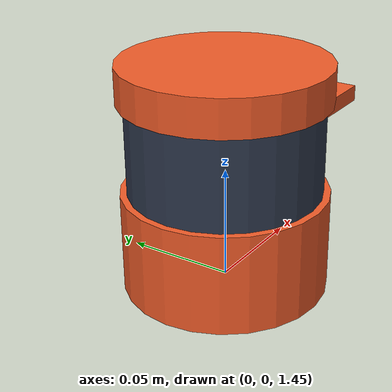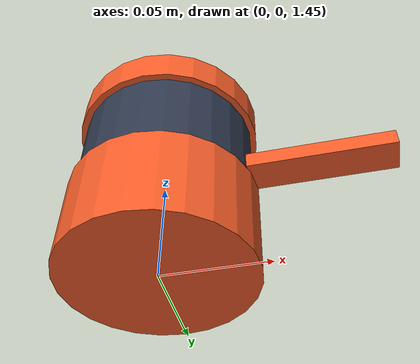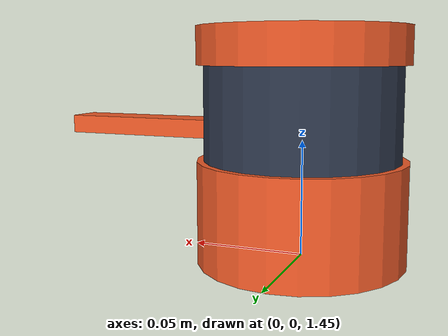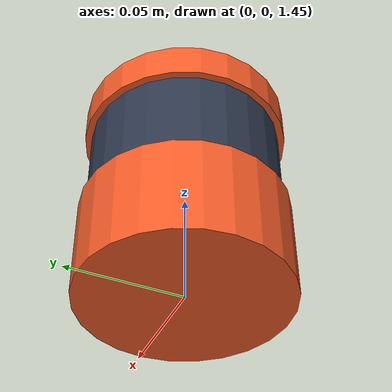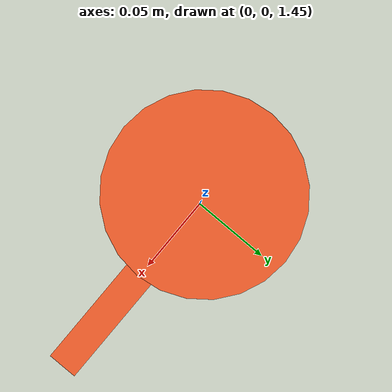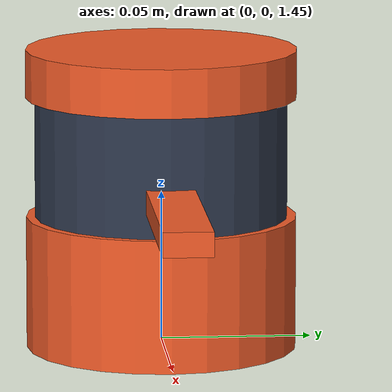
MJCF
<mujoco model="lidar_3d">

  <compiler angle="degree"/>

  <asset>
    <material name="lidar_shell" rgba="0.95 0.36 0.16 1"/>
    <material name="lidar_glass" rgba="0.18 0.22 0.30 1"/>
  </asset>

  <default>
    <default class="lidar">
      <!-- Visual only: rays ignore contype/conaffinity, but physics should
           not, or a free-flying sensor would bounce off the world. -->
      <geom contype="0" conaffinity="0" group="2" mass="0.001"/>
      <site type="sphere" size="0.012" rgba="1.0 0.90 0.25 1" group="2"/>
    </default>
  </default>

  <custom>
    <numeric name="lidar_rings"        data="32"/>
    <numeric name="lidar_elevation"    data="-22 15"/>
    <numeric name="lidar_azimuth_step" data="0.9"/>
    <numeric name="lidar_max_range"    data="35"/>
    <numeric name="lidar_rate"         data="10"/>
  </custom>

  <worldbody>
    <body name="lidar" mocap="true" pos="0 0 1.5">
      <geom name="lidar_base"  class="lidar" type="cylinder"
            size="0.045 0.022" pos="0 0 -0.030" material="lidar_shell"/>
      <geom name="lidar_drum"  class="lidar" type="cylinder"
            size="0.042 0.028" pos="0 0  0.004" material="lidar_glass"/>
      <geom name="lidar_cap"   class="lidar" type="cylinder"
            size="0.045 0.008" pos="0 0  0.040" material="lidar_shell"/>
      <!-- Forward pointer: makes the +X heading readable in the viewer. -->
      <geom name="lidar_nose"  class="lidar" type="box"
            size="0.055 0.008 0.004" pos="0.055 0 0.004" material="lidar_shell"/>

      <!-- THE SENSOR. Ray origin and ray frame. -->
      <site name="lidar_origin" class="lidar" pos="0 0 0.004"/>
    </body>
  </worldbody>
</mujoco>
